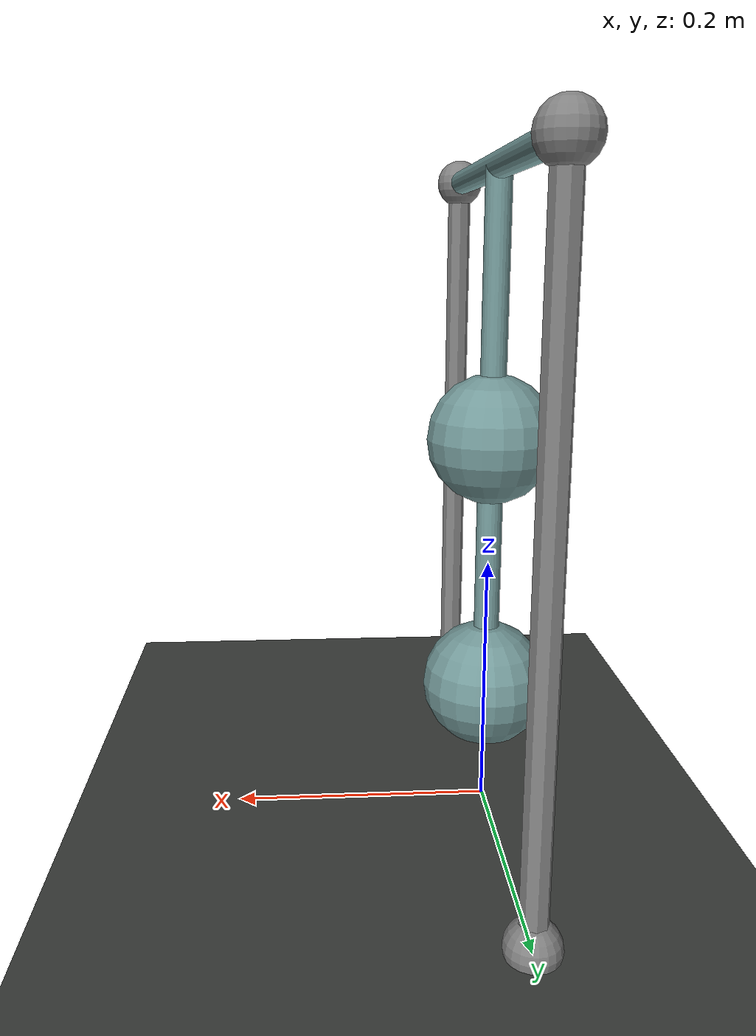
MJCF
<mujoco model="inverted pendulum">
    <option timestep="0.05" iterations="20" gravity="0 0 -9.81">
        <flag sensornoise="enable"/>
    </option>

    <default>
    <geom  rgba="0.45 0.6 0.6 1"/>
        <site type="sphere" size="0.02"/>
    </default>
    <worldbody>
        <light directional="true" cutoff="4" exponent="20" diffuse="1 1 1" specular="0 0 0" pos=".9 .3 2.5" dir="-.9 -.3 -2.5 "/>

        <!-- ======= Ground ======= -->
        <geom name="ground" type="plane" pos="0 0 0" size="0.5 1 2" rgba=" .25 .26 .25 1"/>
        <site name="rFix" pos="0 -.2 .005"/>
        <site name="lFix" pos="0 .2 .005"/>

        <!-- ======= Beam ======= -->
        <body name="beam" pos="0 0 .6">
            <!--density of the rod is ten times smaller than other objects (e.g. the ball) for a better point mass approximation-->
            <geom name="rod" type="cylinder" pos="0 0 -.2" size=".01 .1" density="100"/>
            <geom pos="0 0 -.1" type="capsule" size=".01 .2" quat="0.707 0.707 0 0"/>
            <joint name="pivot" pos="0 0 -0.1" axis="0 1 0" limited="false" damping=".05" type="hinge" />
            <geom name="midball" type="sphere" pos="0 0 -0.3" size=".05" density="10000" />
            <site name="rBeam" pos="0 -.2 -.1"/>
            <site name="lBeam" pos="0 .2 -.1"/>
            <body name="ballbody" pos="0 0 -0.5">
                <geom name="pole2" type="cylinder" pos="0 0 0.1" size=".01 .1" density="100" />
                <joint name="pole2" pos="0 0 0.2" axis="0 1 0" limited="false" damping=".05" type="hinge" />
                <geom name="ballgeom" type="sphere" size=".05"/>
            </body>
        </body>
    </worldbody>
    <tendon>
        <spatial name="lThread" width="0.01">
            <site site="lBeam"/>
            <site site="lFix"/>
        </spatial>
        <spatial name="rThread"  width="0.01">
        <site site="rBeam"/>
        <site site="rFix"/>
        </spatial>
    </tendon>
    <actuator>
        <motor joint='pivot' name='motor' gear="1" />
    </actuator>
    <sensor>
        <jointpos name="encoder" joint="pivot" noise="0.001"/>
    </sensor>
</mujoco>
